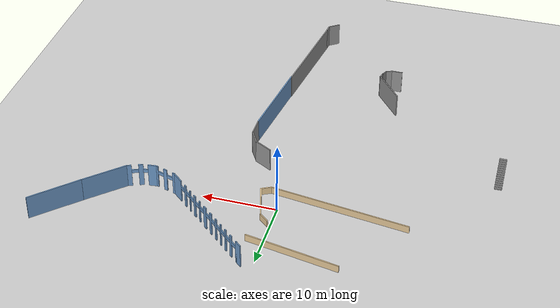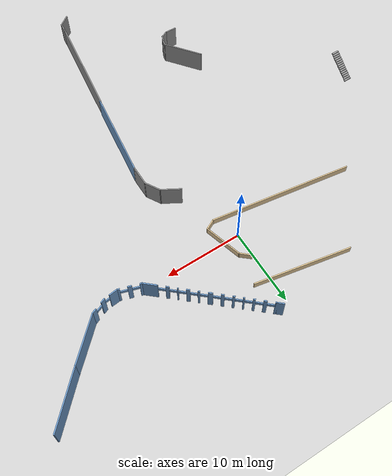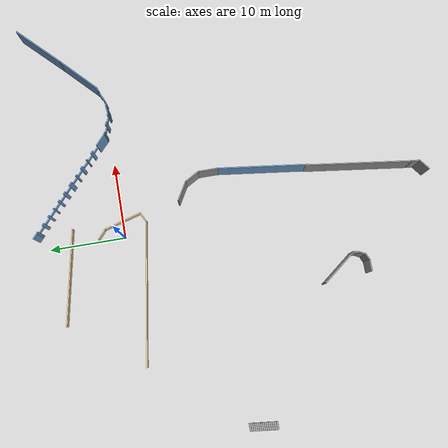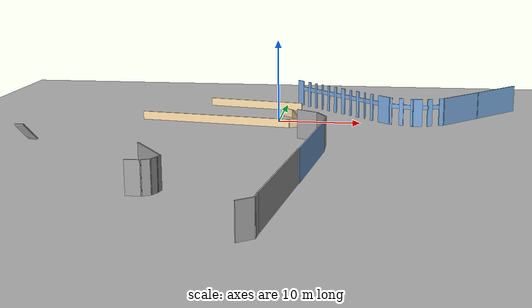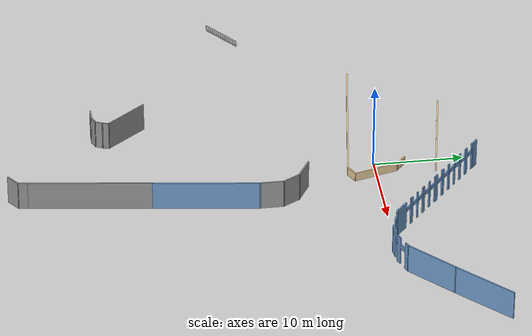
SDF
<sdf version="1.6">
 <world name="default">
  <model name="ground_plane">
   <static>1</static>
   <link name="link">
    <collision name="collision">
     <geometry><plane><normal>0 0 1</normal><size>100 100</size></plane></geometry>
     <surface><friction><ode><mu>100</mu><mu2>50</mu2></ode></friction></surface>
    </collision>
    <visual name="visual">
     <cast_shadows>0</cast_shadows>
     <geometry><plane><normal>0 0 1</normal><size>100 100</size></plane></geometry>
     <material>
      <script><uri>file://media/materials/scripts/gazebo.material</uri><name>Gazebo/Grey</name></script>
     </material>
    </visual>
   </link>
  </model>
  <model name="compound">
   <pose>3.54588 -0.628009 0 0 -0 0</pose>
   <link name="Stairs_2">
    <visual name="Stairs_2_Visual_0">
     <pose>-29.986 -11.3674 0.083333 0 -0 0</pose>
     <geometry><box><size>1 0.233333 0.166667</size></box></geometry>
     <material>
      <script><uri>file://media/materials/scripts/gazebo.material</uri><name>Gazebo/Grey</name></script>
      <ambient>1 1 1 1</ambient>
     </material>
     <meta><layer>0</layer></meta>
    </visual>
    <collision name="Stairs_2_Collision_0">
     <geometry><box><size>1 0.233333 0.166667</size></box></geometry>
     <pose>-29.986 -11.3674 0.083333 0 -0 0</pose>
    </collision>
    <visual name="Stairs_2_Visual_1">
     <pose>-29.986 -11.6007 0.25 0 -0 0</pose>
     <geometry><box><size>1 0.233333 0.166667</size></box></geometry>
     <material>
      <script><uri>file://media/materials/scripts/gazebo.material</uri><name>Gazebo/Grey</name></script>
      <ambient>1 1 1 1</ambient>
     </material>
     <meta><layer>0</layer></meta>
    </visual>
    <collision name="Stairs_2_Collision_1">
     <geometry><box><size>1 0.233333 0.166667</size></box></geometry>
     <pose>-29.986 -11.6007 0.25 0 -0 0</pose>
    </collision>
    <visual name="Stairs_2_Visual_2">
     <pose>-29.986 -11.8341 0.416667 0 -0 0</pose>
     <geometry><box><size>1 0.233333 0.166667</size></box></geometry>
     <material>
      <script><uri>file://media/materials/scripts/gazebo.material</uri><name>Gazebo/Grey</name></script>
      <ambient>1 1 1 1</ambient>
     </material>
     <meta><layer>0</layer></meta>
    </visual>
    <collision name="Stairs_2_Collision_2">
     <geometry><box><size>1 0.233333 0.166667</size></box></geometry>
     <pose>-29.986 -11.8341 0.416667 0 -0 0</pose>
    </collision>
    <visual name="Stairs_2_Visual_3">
     <pose>-29.986 -12.0674 0.583333 0 -0 0</pose>
     <geometry><box><size>1 0.233333 0.166667</size></box></geometry>
     <material>
      <script><uri>file://media/materials/scripts/gazebo.material</uri><name>Gazebo/Grey</name></script>
      <ambient>1 1 1 1</ambient>
     </material>
     <meta><layer>0</layer></meta>
    </visual>
    <collision name="Stairs_2_Collision_3">
     <geometry><box><size>1 0.233333 0.166667</size></box></geometry>
     <pose>-29.986 -12.0674 0.583333 0 -0 0</pose>
    </collision>
    <visual name="Stairs_2_Visual_4">
     <pose>-29.986 -12.3007 0.75 0 -0 0</pose>
     <geometry><box><size>1 0.233333 0.166667</size></box></geometry>
     <material>
      <script><uri>file://media/materials/scripts/gazebo.material</uri><name>Gazebo/Grey</name></script>
      <ambient>1 1 1 1</ambient>
     </material>
     <meta><layer>0</layer></meta>
    </visual>
    <collision name="Stairs_2_Collision_4">
     <geometry><box><size>1 0.233333 0.166667</size></box></geometry>
     <pose>-29.986 -12.3007 0.75 0 -0 0</pose>
    </collision>
    <visual name="Stairs_2_Visual_5">
     <pose>-29.986 -12.5341 0.916667 0 -0 0</pose>
     <geometry><box><size>1 0.233333 0.166667</size></box></geometry>
     <material>
      <script><uri>file://media/materials/scripts/gazebo.material</uri><name>Gazebo/Grey</name></script>
      <ambient>1 1 1 1</ambient>
     </material>
     <meta><layer>0</layer></meta>
    </visual>
    <collision name="Stairs_2_Collision_5">
     <geometry><box><size>1 0.233333 0.166667</size></box></geometry>
     <pose>-29.986 -12.5341 0.916667 0 -0 0</pose>
    </collision>
    <visual name="Stairs_2_Visual_6">
     <pose>-29.986 -12.7674 1.08333 0 -0 0</pose>
     <geometry><box><size>1 0.233333 0.166667</size></box></geometry>
     <material>
      <script><uri>file://media/materials/scripts/gazebo.material</uri><name>Gazebo/Grey</name></script>
      <ambient>1 1 1 1</ambient>
     </material>
     <meta><layer>0</layer></meta>
    </visual>
    <collision name="Stairs_2_Collision_6">
     <geometry><box><size>1 0.233333 0.166667</size></box></geometry>
     <pose>-29.986 -12.7674 1.08333 0 -0 0</pose>
    </collision>
    <visual name="Stairs_2_Visual_7">
     <pose>-29.986 -13.0007 1.25 0 -0 0</pose>
     <geometry><box><size>1 0.233333 0.166667</size></box></geometry>
     <material>
      <script><uri>file://media/materials/scripts/gazebo.material</uri><name>Gazebo/Grey</name></script>
      <ambient>1 1 1 1</ambient>
     </material>
     <meta><layer>0</layer></meta>
    </visual>
    <collision name="Stairs_2_Collision_7">
     <geometry><box><size>1 0.233333 0.166667</size></box></geometry>
     <pose>-29.986 -13.0007 1.25 0 -0 0</pose>
    </collision>
    <visual name="Stairs_2_Visual_8">
     <pose>-29.986 -13.2341 1.41667 0 -0 0</pose>
     <geometry><box><size>1 0.233333 0.166667</size></box></geometry>
     <material>
      <script><uri>file://media/materials/scripts/gazebo.material</uri><name>Gazebo/Grey</name></script>
      <ambient>1 1 1 1</ambient>
     </material>
     <meta><layer>0</layer></meta>
    </visual>
    <collision name="Stairs_2_Collision_8">
     <geometry><box><size>1 0.233333 0.166667</size></box></geometry>
     <pose>-29.986 -13.2341 1.41667 0 -0 0</pose>
    </collision>
    <visual name="Stairs_2_Visual_9">
     <pose>-29.986 -13.4674 1.58333 0 -0 0</pose>
     <geometry><box><size>1 0.233333 0.166667</size></box></geometry>
     <material>
      <script><uri>file://media/materials/scripts/gazebo.material</uri><name>Gazebo/Grey</name></script>
      <ambient>1 1 1 1</ambient>
     </material>
     <meta><layer>0</layer></meta>
    </visual>
    <collision name="Stairs_2_Collision_9">
     <geometry><box><size>1 0.233333 0.166667</size></box></geometry>
     <pose>-29.986 -13.4674 1.58333 0 -0 0</pose>
    </collision>
    <visual name="Stairs_2_Visual_10">
     <pose>-29.986 -13.7007 1.75 0 -0 0</pose>
     <geometry><box><size>1 0.233333 0.166667</size></box></geometry>
     <material>
      <script><uri>file://media/materials/scripts/gazebo.material</uri><name>Gazebo/Grey</name></script>
      <ambient>1 1 1 1</ambient>
     </material>
     <meta><layer>0</layer></meta>
    </visual>
    <collision name="Stairs_2_Collision_10">
     <geometry><box><size>1 0.233333 0.166667</size></box></geometry>
     <pose>-29.986 -13.7007 1.75 0 -0 0</pose>
    </collision>
    <visual name="Stairs_2_Visual_11">
     <pose>-29.986 -13.9341 1.91667 0 -0 0</pose>
     <geometry><box><size>1 0.233333 0.166667</size></box></geometry>
     <material>
      <script><uri>file://media/materials/scripts/gazebo.material</uri><name>Gazebo/Grey</name></script>
      <ambient>1 1 1 1</ambient>
     </material>
     <meta><layer>0</layer></meta>
    </visual>
    <collision name="Stairs_2_Collision_11">
     <geometry><box><size>1 0.233333 0.166667</size></box></geometry>
     <pose>-29.986 -13.9341 1.91667 0 -0 0</pose>
    </collision>
    <visual name="Stairs_2_Visual_12">
     <pose>-29.986 -14.1674 2.08333 0 -0 0</pose>
     <geometry><box><size>1 0.233333 0.166667</size></box></geometry>
     <material>
      <script><uri>file://media/materials/scripts/gazebo.material</uri><name>Gazebo/Grey</name></script>
      <ambient>1 1 1 1</ambient>
     </material>
     <meta><layer>0</layer></meta>
    </visual>
    <collision name="Stairs_2_Collision_12">
     <geometry><box><size>1 0.233333 0.166667</size></box></geometry>
     <pose>-29.986 -14.1674 2.08333 0 -0 0</pose>
    </collision>
    <visual name="Stairs_2_Visual_13">
     <pose>-29.986 -14.4007 2.25 0 -0 0</pose>
     <geometry><box><size>1 0.233333 0.166667</size></box></geometry>
     <material>
      <script><uri>file://media/materials/scripts/gazebo.material</uri><name>Gazebo/Grey</name></script>
      <ambient>1 1 1 1</ambient>
     </material>
     <meta><layer>0</layer></meta>
    </visual>
    <collision name="Stairs_2_Collision_13">
     <geometry><box><size>1 0.233333 0.166667</size></box></geometry>
     <pose>-29.986 -14.4007 2.25 0 -0 0</pose>
    </collision>
    <visual name="Stairs_2_Visual_14">
     <pose>-29.986 -14.6341 2.41667 0 -0 0</pose>
     <geometry><box><size>1 0.233333 0.166667</size></box></geometry>
     <material>
      <script><uri>file://media/materials/scripts/gazebo.material</uri><name>Gazebo/Grey</name></script>
      <ambient>1 1 1 1</ambient>
     </material>
     <meta><layer>0</layer></meta>
    </visual>
    <collision name="Stairs_2_Collision_14">
     <geometry><box><size>1 0.233333 0.166667</size></box></geometry>
     <pose>-29.986 -14.6341 2.41667 0 -0 0</pose>
    </collision>
   </link>
   <link name="Wall_105">
    <collision name="Wall_105_Collision">
     <geometry><box><size>5.39481 0.15 4.0</size></box></geometry>
     <pose>0 0 1.25 0 -0 0</pose>
    </collision>
    <visual name="Wall_105_Visual">
     <pose>0 0 1.25 0 -0 0</pose>
     <geometry><box><size>5.39481 0.15 4.0</size></box></geometry>
     <material>
      <script><uri>file://media/materials/scripts/gazebo.material</uri><name>Gazebo/Grey</name></script>
      <ambient>1 1 1 1</ambient>
     </material>
     <meta><layer>0</layer></meta>
    </visual>
    <pose>-12.2975 -25.9342 0 0 -0 -0.909753</pose>
   </link>
   <link name="Wall_106">
    <collision name="Wall_106_Collision">
     <geometry><box><size>0.853665 0.15 4.0</size></box></geometry>
     <pose>0 0 1.25 0 -0 0</pose>
    </collision>
    <visual name="Wall_106_Visual">
     <pose>0 0 1.25 0 -0 0</pose>
     <geometry><box><size>0.853665 0.15 4.0</size></box></geometry>
     <material>
      <script><uri>file://media/materials/scripts/gazebo.material</uri><name>Gazebo/Grey</name></script>
      <ambient>1 1 1 1</ambient>
     </material>
     <meta><layer>0</layer></meta>
    </visual>
    <pose>-10.7565 -28.3492 0 0 -0 -1.76819</pose>
   </link>
   <link name="Wall_107">
    <collision name="Wall_107_Collision">
     <geometry><box><size>0.972873 0.15 4.0</size></box></geometry>
     <pose>0 0 1.25 0 -0 0</pose>
    </collision>
    <visual name="Wall_107_Visual">
     <pose>0 0 1.25 0 -0 0</pose>
     <geometry><box><size>0.972873 0.15 4.0</size></box></geometry>
     <material>
      <script><uri>file://media/materials/scripts/gazebo.material</uri><name>Gazebo/Grey</name></script>
      <ambient>1 1 1 1</ambient>
     </material>
     <meta><layer>0</layer></meta>
    </visual>
    <pose>-11.0095 -29.0623 0 0 -0 -2.03444</pose>
   </link>
   <link name="Wall_108">
    <collision name="Wall_108_Collision">
     <geometry><box><size>1.01426 0.15 4.0</size></box></geometry>
     <pose>0 0 1.25 0 -0 0</pose>
    </collision>
    <visual name="Wall_108_Visual">
     <pose>0 0 1.25 0 -0 0</pose>
     <geometry><box><size>1.01426 0.15 4.0</size></box></geometry>
     <material>
      <script><uri>file://media/materials/scripts/gazebo.material</uri><name>Gazebo/Grey</name></script>
      <ambient>1 1 1 1</ambient>
     </material>
     <meta><layer>0</layer></meta>
    </visual>
    <pose>-11.5845 -29.6142 0 0 -0 -2.70175</pose>
   </link>
   <link name="Wall_109">
    <collision name="Wall_109_Collision">
     <geometry><box><size>1.576 0.15 4.0</size></box></geometry>
     <pose>0 0 1.25 0 -0 0</pose>
    </collision>
    <visual name="Wall_109_Visual">
     <pose>0 0 1.25 0 -0 0</pose>
     <geometry><box><size>1.576 0.15 4.0</size></box></geometry>
     <material>
      <script><uri>file://media/materials/scripts/gazebo.material</uri><name>Gazebo/Grey</name></script>
      <ambient>1 1 1 1</ambient>
     </material>
     <meta><layer>0</layer></meta>
    </visual>
    <pose>-12.6885 -29.7983 0 0 -0 3.14159</pose>
   </link>
   <link name="Wall_113">
    <collision name="Wall_113_Collision">
     <geometry><box><size>1.76 0.15 4.0</size></box></geometry>
     <pose>0 0 1.25 0 -0 0</pose>
    </collision>
    <visual name="Wall_113_Visual">
     <pose>0 0 1.25 0 -0 0</pose>
     <geometry><box><size>1.76 0.15 4.0</size></box></geometry>
     <material>
      <script><uri>file://media/materials/scripts/gazebo.material</uri><name>Gazebo/Grey</name></script>
      <ambient>1 1 1 1</ambient>
     </material>
     <meta><layer>0</layer></meta>
    </visual>
    <pose>-1.07346 -39.3892 0 0 -0 0.643501</pose>
   </link>
   <link name="Wall_114">
    <collision name="Wall_114_Collision">
     <geometry><box><size>1.16617 0.15 4.0</size></box></geometry>
     <pose>0 0 1.25 0 -0 0</pose>
    </collision>
    <visual name="Wall_114_Visual">
     <pose>0 0 1.25 0 -0 0</pose>
     <geometry><box><size>1.16617 0.15 4.0</size></box></geometry>
     <material>
      <script><uri>file://media/materials/scripts/gazebo.material</uri><name>Gazebo/Grey</name></script>
      <ambient>1 1 1 1</ambient>
     </material>
     <meta><layer>0</layer></meta>
    </visual>
    <pose>-0.383461 -38.4003 0 0 -0 1.48014</pose>
   </link>
   <link name="Wall_115">
    <collision name="Wall_115_Collision">
     <geometry><box><size>13.8837 0.15 4.0</size></box></geometry>
     <pose>0 0 1.25 0 -0 0</pose>
    </collision>
    <visual name="Wall_115_Visual">
     <pose>0 0 1.25 0 -0 0</pose>
     <geometry><box><size>13.8837 0.15 4.0</size></box></geometry>
     <material>
      <script><uri>file://media/materials/scripts/gazebo.material</uri><name>Gazebo/Grey</name></script>
      <ambient>1 1 1 1</ambient>
     </material>
     <meta><layer>0</layer></meta>
    </visual>
    <pose>0.559538 -31.0862 0 0 -0 1.43979</pose>
   </link>
   <link name="Wall_154">
    <collision name="Wall_154_Collision">
     <geometry><box><size>7.5 0.15 4.0</size></box></geometry>
     <pose>0 0 1.25 0 -0 0</pose>
    </collision>
    <visual name="Wall_154_Visual">
     <pose>0 0 1.25 0 -0 0</pose>
     <geometry><box><size>7.5 0.15 4.0</size></box></geometry>
     <material>
      <script><uri>file://media/materials/scripts/gazebo.material</uri><name>Gazebo/Grey</name></script>
      <ambient>0.447059 0.623529 0.811765 1</ambient>
     </material>
     <meta><layer>0</layer></meta>
    </visual>
    <pose>23.6037 8.01983 0 0 -0 0.785398</pose>
   </link>
   <link name="Wall_16">
    <collision name="Wall_16_Collision">
     <geometry><box><size>1.68188 0.15 1</size></box></geometry>
     <pose>0 0 0.5 0 -0 0</pose>
    </collision>
    <visual name="Wall_16_Visual">
     <pose>0 0 0.5 0 -0 0</pose>
     <geometry><box><size>1.68188 0.15 1</size></box></geometry>
     <material>
      <script><uri>file://media/materials/scripts/gazebo.material</uri><name>Gazebo/Grey</name></script>
      <ambient>0.921569 0.807843 0.615686 1</ambient>
     </material>
     <meta><layer>0</layer></meta>
    </visual>
    <pose>-2.62674 3.50758 0 0 -0 -0.721655</pose>
   </link>
   <link name="Wall_17">
    <collision name="Wall_17_Collision">
     <geometry><box><size>5.17328 0.15 1</size></box></geometry>
     <pose>0 0 0.5 0 -0 0</pose>
    </collision>
    <visual name="Wall_17_Visual">
     <pose>0 0 0.5 0 -0 0</pose>
     <geometry><box><size>5.17328 0.15 1</size></box></geometry>
     <material>
      <script><uri>file://media/materials/scripts/gazebo.material</uri><name>Gazebo/Grey</name></script>
      <ambient>0.921569 0.807843 0.615686 1</ambient>
     </material>
     <meta><layer>0</layer></meta>
    </visual>
    <pose>-1.36173 0.586584 0 0 -0 -1.2925</pose>
   </link>
   <link name="Wall_18">
    <collision name="Wall_18_Collision">
     <geometry><box><size>1.54903 0.15 1</size></box></geometry>
     <pose>0 0 0.5 0 -0 0</pose>
    </collision>
    <visual name="Wall_18_Visual">
     <pose>0 0 0.5 0 -0 0</pose>
     <geometry><box><size>1.54903 0.15 1</size></box></geometry>
     <material>
      <script><uri>file://media/materials/scripts/gazebo.material</uri><name>Gazebo/Grey</name></script>
      <ambient>0.921569 0.807843 0.615686 1</ambient>
     </material>
     <meta><layer>0</layer></meta>
    </visual>
    <pose>-1.29273 -2.15042 0 0 -0 -2.66324</pose>
   </link>
   <link name="Wall_19">
    <collision name="Wall_19_Collision">
     <geometry><box><size>18.8856 0.15 1</size></box></geometry>
     <pose>0 0 0.5 0 -0 0</pose>
    </collision>
    <visual name="Wall_19_Visual">
     <pose>0 0 0.5 0 -0 0</pose>
     <geometry><box><size>18.8856 0.15 1</size></box></geometry>
     <material>
      <script><uri>file://media/materials/scripts/gazebo.material</uri><name>Gazebo/Grey</name></script>
      <ambient>0.921569 0.807843 0.615686 1</ambient>
     </material>
     <meta><layer>0</layer></meta>
    </visual>
    <pose>-11.1827 -1.11542 0 0 -0 2.99622</pose>
   </link>
   <link name="Wall_33">
    <collision name="Wall_33_Collision">
     <geometry><box><size>12.6992 0.15 1</size></box></geometry>
     <pose>0 0 0.5 0 -0 0</pose>
    </collision>
    <visual name="Wall_33_Visual">
     <pose>0 0 0.5 0 -0 0</pose>
     <geometry><box><size>12.6992 0.15 1</size></box></geometry>
     <material>
      <script><uri>file://media/materials/scripts/gazebo.material</uri><name>Gazebo/Grey</name></script>
      <ambient>0.921569 0.807843 0.615686 1</ambient>
     </material>
     <meta><layer>0</layer></meta>
    </visual>
    <pose>-7.52873 8.41459 0 0 -0 2.95354</pose>
   </link>
   <link name="Wall_38">
    <pose>3.96254 6.40265 0 0 -0 -0.726625</pose>
    <visual name="Wall_38_Visual_0">
     <pose>-7.66409 0 1.25 0 -0 0</pose>
     <geometry><box><size>1.07814 0.15 4.0</size></box></geometry>
     <material>
      <script><uri>file://media/materials/scripts/gazebo.material</uri><name>Gazebo/Grey</name></script>
      <ambient>0.447059 0.623529 0.811765 1</ambient>
     </material>
     <meta><layer>0</layer></meta>
    </visual>
    <collision name="Wall_38_Collision_0">
     <geometry><box><size>1.07814 0.15 4.0</size></box></geometry>
     <pose>-7.66409 0 1.25 0 -0 0</pose>
    </collision>
    <visual name="Wall_38_Visual_1">
     <pose>-7.27028 0 1.25 0 -0 0</pose>
     <geometry><box><size>0.290535 0.15 4.0</size></box></geometry>
     <material>
      <script><uri>file://media/materials/scripts/gazebo.material</uri><name>Gazebo/Grey</name></script>
      <ambient>0.447059 0.623529 0.811765 1</ambient>
     </material>
     <meta><layer>0</layer></meta>
    </visual>
    <collision name="Wall_38_Collision_1">
     <geometry><box><size>0.290535 0.15 4.0</size></box></geometry>
     <pose>-7.27028 0 1.25 0 -0 0</pose>
    </collision>
    <visual name="Wall_38_Visual_2">
     <pose>-6.00794 0 1.25 0 -0 0</pose>
     <geometry><box><size>0.434154 0.15 4.0</size></box></geometry>
     <material>
      <script><uri>file://media/materials/scripts/gazebo.material</uri><name>Gazebo/Grey</name></script>
      <ambient>0.447059 0.623529 0.811765 1</ambient>
     </material>
     <meta><layer>0</layer></meta>
    </visual>
    <collision name="Wall_38_Collision_2">
     <geometry><box><size>0.434154 0.15 4.0</size></box></geometry>
     <pose>-6.00794 0 1.25 0 -0 0</pose>
    </collision>
    <visual name="Wall_38_Visual_3">
     <pose>-4.73841 0 1.25 0 -0 0</pose>
     <geometry><box><size>0.304901 0.15 4.0</size></box></geometry>
     <material>
      <script><uri>file://media/materials/scripts/gazebo.material</uri><name>Gazebo/Grey</name></script>
      <ambient>0.447059 0.623529 0.811765 1</ambient>
     </material>
     <meta><layer>0</layer></meta>
    </visual>
    <collision name="Wall_38_Collision_3">
     <geometry><box><size>0.304901 0.15 4.0</size></box></geometry>
     <pose>-4.73841 0 1.25 0 -0 0</pose>
    </collision>
    <visual name="Wall_38_Visual_4">
     <pose>-3.57566 0 1.25 0 -0 0</pose>
     <geometry><box><size>0.220603 0.15 4.0</size></box></geometry>
     <material>
      <script><uri>file://media/materials/scripts/gazebo.material</uri><name>Gazebo/Grey</name></script>
      <ambient>0.447059 0.623529 0.811765 1</ambient>
     </material>
     <meta><layer>0</layer></meta>
    </visual>
    <collision name="Wall_38_Collision_4">
     <geometry><box><size>0.220603 0.15 4.0</size></box></geometry>
     <pose>-3.57566 0 1.25 0 -0 0</pose>
    </collision>
    <visual name="Wall_38_Visual_5">
     <pose>-2.41157 0 1.25 0 -0 0</pose>
     <geometry><box><size>0.307582 0.15 4.0</size></box></geometry>
     <material>
      <script><uri>file://media/materials/scripts/gazebo.material</uri><name>Gazebo/Grey</name></script>
      <ambient>0.447059 0.623529 0.811765 1</ambient>
     </material>
     <meta><layer>0</layer></meta>
    </visual>
    <collision name="Wall_38_Collision_5">
     <geometry><box><size>0.307582 0.15 4.0</size></box></geometry>
     <pose>-2.41157 0 1.25 0 -0 0</pose>
    </collision>
    <visual name="Wall_38_Visual_6">
     <pose>-1.15153 0 1.25 0 -0 0</pose>
     <geometry><box><size>0.412488 0.15 4.0</size></box></geometry>
     <material>
      <script><uri>file://media/materials/scripts/gazebo.material</uri><name>Gazebo/Grey</name></script>
      <ambient>0.447059 0.623529 0.811765 1</ambient>
     </material>
     <meta><layer>0</layer></meta>
    </visual>
    <collision name="Wall_38_Collision_6">
     <geometry><box><size>0.412488 0.15 4.0</size></box></geometry>
     <pose>-1.15153 0 1.25 0 -0 0</pose>
    </collision>
    <visual name="Wall_38_Visual_7">
     <pose>0.250577 0 1.25 0 -0 0</pose>
     <geometry><box><size>0.591727 0.15 4.0</size></box></geometry>
     <material>
      <script><uri>file://media/materials/scripts/gazebo.material</uri><name>Gazebo/Grey</name></script>
      <ambient>0.447059 0.623529 0.811765 1</ambient>
     </material>
     <meta><layer>0</layer></meta>
    </visual>
    <collision name="Wall_38_Collision_7">
     <geometry><box><size>0.591727 0.15 4.0</size></box></geometry>
     <pose>0.250577 0 1.25 0 -0 0</pose>
    </collision>
    <visual name="Wall_38_Visual_8">
     <pose>1.57613 0 1.25 0 -0 0</pose>
     <geometry><box><size>0.259377 0.15 4.0</size></box></geometry>
     <material>
      <script><uri>file://media/materials/scripts/gazebo.material</uri><name>Gazebo/Grey</name></script>
      <ambient>0.447059 0.623529 0.811765 1</ambient>
     </material>
     <meta><layer>0</layer></meta>
    </visual>
    <collision name="Wall_38_Collision_8">
     <geometry><box><size>0.259377 0.15 4.0</size></box></geometry>
     <pose>1.57613 0 1.25 0 -0 0</pose>
    </collision>
    <visual name="Wall_38_Visual_9">
     <pose>2.81725 0 1.25 0 -0 0</pose>
     <geometry><box><size>0.422876 0.15 4.0</size></box></geometry>
     <material>
      <script><uri>file://media/materials/scripts/gazebo.material</uri><name>Gazebo/Grey</name></script>
      <ambient>0.447059 0.623529 0.811765 1</ambient>
     </material>
     <meta><layer>0</layer></meta>
    </visual>
    <collision name="Wall_38_Collision_9">
     <geometry><box><size>0.422876 0.15 4.0</size></box></geometry>
     <pose>2.81725 0 1.25 0 -0 0</pose>
    </collision>
    <visual name="Wall_38_Visual_10">
     <pose>4.01709 0 1.25 0 -0 0</pose>
     <geometry><box><size>0.176801 0.15 4.0</size></box></geometry>
     <material>
      <script><uri>file://media/materials/scripts/gazebo.material</uri><name>Gazebo/Grey</name></script>
      <ambient>0.447059 0.623529 0.811765 1</ambient>
     </material>
     <meta><layer>0</layer></meta>
    </visual>
    <collision name="Wall_38_Collision_10">
     <geometry><box><size>0.176801 0.15 4.0</size></box></geometry>
     <pose>4.01709 0 1.25 0 -0 0</pose>
    </collision>
    <visual name="Wall_38_Visual_11">
     <pose>5.21693 0 1.25 0 -0 0</pose>
     <geometry><box><size>0.422871 0.15 4.0</size></box></geometry>
     <material>
      <script><uri>file://media/materials/scripts/gazebo.material</uri><name>Gazebo/Grey</name></script>
      <ambient>0.447059 0.623529 0.811765 1</ambient>
     </material>
     <meta><layer>0</layer></meta>
    </visual>
    <collision name="Wall_38_Collision_11">
     <geometry><box><size>0.422871 0.15 4.0</size></box></geometry>
     <pose>5.21693 0 1.25 0 -0 0</pose>
    </collision>
    <visual name="Wall_38_Visual_12">
     <pose>7.26576 0 1.25 0 -0 0</pose>
     <geometry><box><size>1.87479 0.15 4.0</size></box></geometry>
     <material>
      <script><uri>file://media/materials/scripts/gazebo.material</uri><name>Gazebo/Grey</name></script>
      <ambient>0.447059 0.623529 0.811765 1</ambient>
     </material>
     <meta><layer>0</layer></meta>
    </visual>
    <collision name="Wall_38_Collision_12">
     <geometry><box><size>1.87479 0.15 4.0</size></box></geometry>
     <pose>7.26576 0 1.25 0 -0 0</pose>
    </collision>
    <visual name="Wall_38_Visual_13">
     <pose>-6.67502 0 2.25 0 -0 0</pose>
     <geometry><box><size>0.9 0.15 0.5</size></box></geometry>
     <material>
      <script><uri>file://media/materials/scripts/gazebo.material</uri><name>Gazebo/Grey</name></script>
      <ambient>0.447059 0.623529 0.811765 1</ambient>
     </material>
     <meta><layer>0</layer></meta>
    </visual>
    <collision name="Wall_38_Collision_13">
     <geometry><box><size>0.9 0.15 0.5</size></box></geometry>
     <pose>-6.67502 0 2.25 0 -0 0</pose>
    </collision>
    <visual name="Wall_38_Visual_14">
     <pose>-6.67502 0 2.25 0 -0 0</pose>
     <geometry><box><size>0.9 0.15 0.5</size></box></geometry>
     <material>
      <script><uri>file://media/materials/scripts/gazebo.material</uri><name>Gazebo/Grey</name></script>
      <ambient>0.447059 0.623529 0.811765 1</ambient>
     </material>
     <meta><layer>0</layer></meta>
    </visual>
    <collision name="Wall_38_Collision_14">
     <geometry><box><size>0.9 0.15 0.5</size></box></geometry>
     <pose>-6.67502 0 2.25 0 -0 0</pose>
    </collision>
    <visual name="Wall_38_Visual_15">
     <pose>-5.34086 0 2.25 0 -0 0</pose>
     <geometry><box><size>0.9 0.15 0.5</size></box></geometry>
     <material>
      <script><uri>file://media/materials/scripts/gazebo.material</uri><name>Gazebo/Grey</name></script>
      <ambient>0.447059 0.623529 0.811765 1</ambient>
     </material>
     <meta><layer>0</layer></meta>
    </visual>
    <collision name="Wall_38_Collision_15">
     <geometry><box><size>0.9 0.15 0.5</size></box></geometry>
     <pose>-5.34086 0 2.25 0 -0 0</pose>
    </collision>
    <visual name="Wall_38_Visual_16">
     <pose>-4.13596 0 2.25 0 -0 0</pose>
     <geometry><box><size>0.9 0.15 0.5</size></box></geometry>
     <material>
      <script><uri>file://media/materials/scripts/gazebo.material</uri><name>Gazebo/Grey</name></script>
      <ambient>0.447059 0.623529 0.811765 1</ambient>
     </material>
     <meta><layer>0</layer></meta>
    </visual>
    <collision name="Wall_38_Collision_16">
     <geometry><box><size>0.9 0.15 0.5</size></box></geometry>
     <pose>-4.13596 0 2.25 0 -0 0</pose>
    </collision>
    <visual name="Wall_38_Visual_17">
     <pose>-3.01536 0 2.25 0 -0 0</pose>
     <geometry><box><size>0.9 0.15 0.5</size></box></geometry>
     <material>
      <script><uri>file://media/materials/scripts/gazebo.material</uri><name>Gazebo/Grey</name></script>
      <ambient>0.447059 0.623529 0.811765 1</ambient>
     </material>
     <meta><layer>0</layer></meta>
    </visual>
    <collision name="Wall_38_Collision_17">
     <geometry><box><size>0.9 0.15 0.5</size></box></geometry>
     <pose>-3.01536 0 2.25 0 -0 0</pose>
    </collision>
    <visual name="Wall_38_Visual_18">
     <pose>-1.80777 0 2.25 0 -0 0</pose>
     <geometry><box><size>0.9 0.15 0.5</size></box></geometry>
     <material>
      <script><uri>file://media/materials/scripts/gazebo.material</uri><name>Gazebo/Grey</name></script>
      <ambient>0.447059 0.623529 0.811765 1</ambient>
     </material>
     <meta><layer>0</layer></meta>
    </visual>
    <collision name="Wall_38_Collision_18">
     <geometry><box><size>0.9 0.15 0.5</size></box></geometry>
     <pose>-1.80777 0 2.25 0 -0 0</pose>
    </collision>
    <visual name="Wall_38_Visual_19">
     <pose>-0.495287 0 2.25 0 -0 0</pose>
     <geometry><box><size>0.9 0.15 0.5</size></box></geometry>
     <material>
      <script><uri>file://media/materials/scripts/gazebo.material</uri><name>Gazebo/Grey</name></script>
      <ambient>0.447059 0.623529 0.811765 1</ambient>
     </material>
     <meta><layer>0</layer></meta>
    </visual>
    <collision name="Wall_38_Collision_19">
     <geometry><box><size>0.9 0.15 0.5</size></box></geometry>
     <pose>-0.495287 0 2.25 0 -0 0</pose>
    </collision>
    <visual name="Wall_38_Visual_20">
     <pose>0.99644 0 2.25 0 -0 0</pose>
     <geometry><box><size>0.9 0.15 0.5</size></box></geometry>
     <material>
      <script><uri>file://media/materials/scripts/gazebo.material</uri><name>Gazebo/Grey</name></script>
      <ambient>0.447059 0.623529 0.811765 1</ambient>
     </material>
     <meta><layer>0</layer></meta>
    </visual>
    <collision name="Wall_38_Collision_20">
     <geometry><box><size>0.9 0.15 0.5</size></box></geometry>
     <pose>0.99644 0 2.25 0 -0 0</pose>
    </collision>
    <visual name="Wall_38_Visual_21">
     <pose>2.15582 0 2.25 0 -0 0</pose>
     <geometry><box><size>0.9 0.15 0.5</size></box></geometry>
     <material>
      <script><uri>file://media/materials/scripts/gazebo.material</uri><name>Gazebo/Grey</name></script>
      <ambient>0.447059 0.623529 0.811765 1</ambient>
     </material>
     <meta><layer>0</layer></meta>
    </visual>
    <collision name="Wall_38_Collision_21">
     <geometry><box><size>0.9 0.15 0.5</size></box></geometry>
     <pose>2.15582 0 2.25 0 -0 0</pose>
    </collision>
    <visual name="Wall_38_Visual_22">
     <pose>3.47869 0 2.25 0 -0 0</pose>
     <geometry><box><size>0.9 0.15 0.5</size></box></geometry>
     <material>
      <script><uri>file://media/materials/scripts/gazebo.material</uri><name>Gazebo/Grey</name></script>
      <ambient>0.447059 0.623529 0.811765 1</ambient>
     </material>
     <meta><layer>0</layer></meta>
    </visual>
    <collision name="Wall_38_Collision_22">
     <geometry><box><size>0.9 0.15 0.5</size></box></geometry>
     <pose>3.47869 0 2.25 0 -0 0</pose>
    </collision>
    <visual name="Wall_38_Visual_23">
     <pose>4.55549 0 2.25 0 -0 0</pose>
     <geometry><box><size>0.9 0.15 0.5</size></box></geometry>
     <material>
      <script><uri>file://media/materials/scripts/gazebo.material</uri><name>Gazebo/Grey</name></script>
      <ambient>0.447059 0.623529 0.811765 1</ambient>
     </material>
     <meta><layer>0</layer></meta>
    </visual>
    <collision name="Wall_38_Collision_23">
     <geometry><box><size>0.9 0.15 0.5</size></box></geometry>
     <pose>4.55549 0 2.25 0 -0 0</pose>
    </collision>
    <visual name="Wall_38_Visual_24">
     <pose>5.87836 0 2.25 0 -0 0</pose>
     <geometry><box><size>0.9 0.15 0.5</size></box></geometry>
     <material>
      <script><uri>file://media/materials/scripts/gazebo.material</uri><name>Gazebo/Grey</name></script>
      <ambient>0.447059 0.623529 0.811765 1</ambient>
     </material>
     <meta><layer>0</layer></meta>
    </visual>
    <collision name="Wall_38_Collision_24">
     <geometry><box><size>0.9 0.15 0.5</size></box></geometry>
     <pose>5.87836 0 2.25 0 -0 0</pose>
    </collision>
   </link>
   <link name="Wall_39">
    <pose>11.4316 0.56874 0 0 -0 -0.30181</pose>
    <visual name="Wall_39_Visual_0">
     <pose>-1.3469 0 1.25 0 -0 0</pose>
     <geometry><box><size>0.37605 0.15 4.0</size></box></geometry>
     <material>
      <script><uri>file://media/materials/scripts/gazebo.material</uri><name>Gazebo/Grey</name></script>
      <ambient>0.447059 0.623529 0.811765 1</ambient>
     </material>
     <meta><layer>0</layer></meta>
    </visual>
    <collision name="Wall_39_Collision_0">
     <geometry><box><size>0.37605 0.15 4.0</size></box></geometry>
     <pose>-1.3469 0 1.25 0 -0 0</pose>
    </collision>
    <visual name="Wall_39_Visual_1">
     <pose>0.004839 0 1.25 0 -0 0</pose>
     <geometry><box><size>0.527423 0.15 4.0</size></box></geometry>
     <material>
      <script><uri>file://media/materials/scripts/gazebo.material</uri><name>Gazebo/Grey</name></script>
      <ambient>0.447059 0.623529 0.811765 1</ambient>
     </material>
     <meta><layer>0</layer></meta>
    </visual>
    <collision name="Wall_39_Collision_1">
     <geometry><box><size>0.527423 0.15 4.0</size></box></geometry>
     <pose>0.004839 0 1.25 0 -0 0</pose>
    </collision>
    <visual name="Wall_39_Visual_2">
     <pose>1.35174 0 1.25 0 -0 0</pose>
     <geometry><box><size>0.366373 0.15 4.0</size></box></geometry>
     <material>
      <script><uri>file://media/materials/scripts/gazebo.material</uri><name>Gazebo/Grey</name></script>
      <ambient>0.447059 0.623529 0.811765 1</ambient>
     </material>
     <meta><layer>0</layer></meta>
    </visual>
    <collision name="Wall_39_Collision_2">
     <geometry><box><size>0.366373 0.15 4.0</size></box></geometry>
     <pose>1.35174 0 1.25 0 -0 0</pose>
    </collision>
    <visual name="Wall_39_Visual_3">
     <pose>-0.708873 0 2.25 0 -0 0</pose>
     <geometry><box><size>0.9 0.15 0.5</size></box></geometry>
     <material>
      <script><uri>file://media/materials/scripts/gazebo.material</uri><name>Gazebo/Grey</name></script>
      <ambient>0.447059 0.623529 0.811765 1</ambient>
     </material>
     <meta><layer>0</layer></meta>
    </visual>
    <collision name="Wall_39_Collision_3">
     <geometry><box><size>0.9 0.15 0.5</size></box></geometry>
     <pose>-0.708873 0 2.25 0 -0 0</pose>
    </collision>
    <visual name="Wall_39_Visual_4">
     <pose>0.71855 0 2.25 0 -0 0</pose>
     <geometry><box><size>0.9 0.15 0.5</size></box></geometry>
     <material>
      <script><uri>file://media/materials/scripts/gazebo.material</uri><name>Gazebo/Grey</name></script>
      <ambient>0.447059 0.623529 0.811765 1</ambient>
     </material>
     <meta><layer>0</layer></meta>
    </visual>
    <collision name="Wall_39_Collision_4">
     <geometry><box><size>0.9 0.15 0.5</size></box></geometry>
     <pose>0.71855 0 2.25 0 -0 0</pose>
    </collision>
   </link>
   <link name="Wall_40">
    <pose>13.7198 0.239982 0 0 -0 0.117109</pose>
    <visual name="Wall_40_Visual_0">
     <pose>-0.378587 0 1.25 0 -0 0</pose>
     <geometry><box><size>1.19361 0.15 4.0</size></box></geometry>
     <material>
      <script><uri>file://media/materials/scripts/gazebo.material</uri><name>Gazebo/Grey</name></script>
      <ambient>0.447059 0.623529 0.811765 1</ambient>
     </material>
     <meta><layer>0</layer></meta>
    </visual>
    <collision name="Wall_40_Collision_0">
     <geometry><box><size>1.19361 0.15 4.0</size></box></geometry>
     <pose>-0.378587 0 1.25 0 -0 0</pose>
    </collision>
    <visual name="Wall_40_Visual_1">
     <pose>0.596802 0 2.25 0 -0 0</pose>
     <geometry><box><size>0.757174 0.15 0.5</size></box></geometry>
     <material>
      <script><uri>file://media/materials/scripts/gazebo.material</uri><name>Gazebo/Grey</name></script>
      <ambient>0.447059 0.623529 0.811765 1</ambient>
     </material>
     <meta><layer>0</layer></meta>
    </visual>
    <collision name="Wall_40_Collision_1">
     <geometry><box><size>0.757174 0.15 0.5</size></box></geometry>
     <pose>0.596802 0 2.25 0 -0 0</pose>
    </collision>
   </link>
   <link name="Wall_41">
    <pose>15.574 0.739694 0 0 -0 0.389918</pose>
    <visual name="Wall_41_Visual_0">
     <pose>-0.795086 0 1.25 0 -0 0</pose>
     <geometry><box><size>0.63558 0.15 4.0</size></box></geometry>
     <material>
      <script><uri>file://media/materials/scripts/gazebo.material</uri><name>Gazebo/Grey</name></script>
      <ambient>0.447059 0.623529 0.811765 1</ambient>
     </material>
     <meta><layer>0</layer></meta>
    </visual>
    <collision name="Wall_41_Collision_0">
     <geometry><box><size>0.63558 0.15 4.0</size></box></geometry>
     <pose>-0.795086 0 1.25 0 -0 0</pose>
    </collision>
    <visual name="Wall_41_Visual_1">
     <pose>0.76779 0 1.25 0 -0 0</pose>
     <geometry><box><size>0.690173 0.15 4.0</size></box></geometry>
     <material>
      <script><uri>file://media/materials/scripts/gazebo.material</uri><name>Gazebo/Grey</name></script>
      <ambient>0.447059 0.623529 0.811765 1</ambient>
     </material>
     <meta><layer>0</layer></meta>
    </visual>
    <collision name="Wall_41_Collision_1">
     <geometry><box><size>0.690173 0.15 4.0</size></box></geometry>
     <pose>0.76779 0 1.25 0 -0 0</pose>
    </collision>
    <visual name="Wall_41_Visual_2">
     <pose>-0.027297 0 2.25 0 -0 0</pose>
     <geometry><box><size>0.9 0.15 0.5</size></box></geometry>
     <material>
      <script><uri>file://media/materials/scripts/gazebo.material</uri><name>Gazebo/Grey</name></script>
      <ambient>0.447059 0.623529 0.811765 1</ambient>
     </material>
     <meta><layer>0</layer></meta>
    </visual>
    <collision name="Wall_41_Collision_2">
     <geometry><box><size>0.9 0.15 0.5</size></box></geometry>
     <pose>-0.027297 0 2.25 0 -0 0</pose>
    </collision>
   </link>
   <link name="Wall_42">
    <collision name="Wall_42_Collision">
     <geometry><box><size>6.34429 0.15 4.0</size></box></geometry>
     <pose>0 0 1.25 0 -0 0</pose>
    </collision>
    <visual name="Wall_42_Visual">
     <pose>0 0 1.25 0 -0 0</pose>
     <geometry><box><size>6.34429 0.15 4.0</size></box></geometry>
     <material>
      <script><uri>file://media/materials/scripts/gazebo.material</uri><name>Gazebo/Grey</name></script>
      <ambient>0.447059 0.623529 0.811765 1</ambient>
     </material>
     <meta><layer>0</layer></meta>
    </visual>
    <pose>18.7695 3.27771 0 0 -0 0.76438</pose>
   </link>
   <link name="Wall_52">
    <collision name="Wall_52_Collision">
     <geometry><box><size>2.75 0.15 4.0</size></box></geometry>
     <pose>0 0 1.25 0 -0 0</pose>
    </collision>
    <visual name="Wall_52_Visual">
     <pose>0 0 1.25 0 -0 0</pose>
     <geometry><box><size>2.75 0.15 4.0</size></box></geometry>
     <material>
      <script><uri>file://media/materials/scripts/gazebo.material</uri><name>Gazebo/Grey</name></script>
      <ambient>1 1 1 1</ambient>
     </material>
     <meta><layer>0</layer></meta>
    </visual>
    <pose>0.79995 -7.81689 0 0 -0 -0.523599</pose>
   </link>
   <link name="Wall_53">
    <collision name="Wall_53_Collision">
     <geometry><box><size>2.25 0.15 4.0</size></box></geometry>
     <pose>0 0 1.25 0 -0 0</pose>
    </collision>
    <visual name="Wall_53_Visual">
     <pose>0 0 1.25 0 -0 0</pose>
     <geometry><box><size>2.25 0.15 4.0</size></box></geometry>
     <material>
      <script><uri>file://media/materials/scripts/gazebo.material</uri><name>Gazebo/Grey</name></script>
      <ambient>1 1 1 1</ambient>
     </material>
     <meta><layer>0</layer></meta>
    </visual>
    <pose>2.45078 -9.37622 0 0 -0 -1.0472</pose>
   </link>
   <link name="Wall_54">
    <collision name="Wall_54_Collision">
     <geometry><box><size>2.75 0.15 4.0</size></box></geometry>
     <pose>0 0 1.25 0 -0 0</pose>
    </collision>
    <visual name="Wall_54_Visual">
     <pose>0 0 1.25 0 -0 0</pose>
     <geometry><box><size>2.75 0.15 4.0</size></box></geometry>
     <material>
      <script><uri>file://media/materials/scripts/gazebo.material</uri><name>Gazebo/Grey</name></script>
      <ambient>1 1 1 1</ambient>
     </material>
     <meta><layer>0</layer></meta>
    </visual>
    <pose>2.97578 -11.5855 0 0 -0 -1.5708</pose>
   </link>
   <link name="Wall_56">
    <collision name="Wall_56_Collision">
     <geometry><box><size>11.7701 0.15 4.0</size></box></geometry>
     <pose>0 0 1.25 0 -0 0</pose>
    </collision>
    <visual name="Wall_56_Visual">
     <pose>0 0 1.25 0 -0 0</pose>
     <geometry><box><size>11.7701 0.15 4.0</size></box></geometry>
     <material>
      <script><uri>file://media/materials/scripts/gazebo.material</uri><name>Gazebo/Grey</name></script>
      <ambient>0.447059 0.623529 0.811765 1</ambient>
     </material>
     <meta><layer>0</layer></meta>
    </visual>
    <pose>2.23942 -18.6487 0 0 -0 -1.69788</pose>
   </link>
   <static>1</static>
  </model>
 </world>
</sdf>
